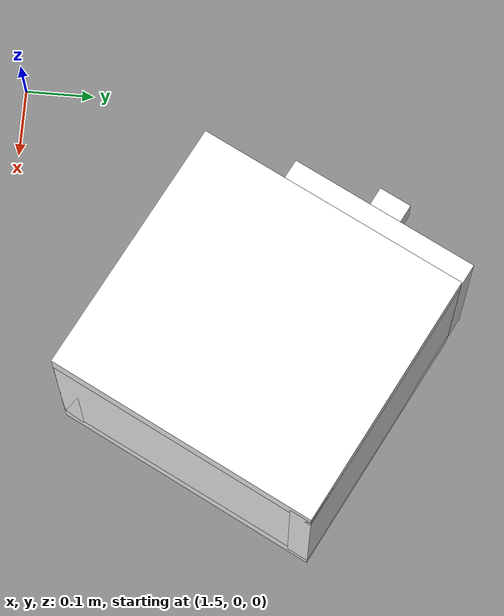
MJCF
<mujoco model="cabinet">
    <compiler angle="radian" eulerseq='zxy' />
    <option gravity = "0 0 0" />
    <option>
        <flag contact = "disable"/>
    </option>
    <statistic	extent="1.0" center="0.0 0.0 0.0"/>
    <visual>
        <map fogstart="3" fogend="5" force="0.1" znear=" 0.100000 " zfar=" 12.000000 "/>
    </visual>
    <size njmax="500" nconmax="100" />
    <actuator>
        <velocity joint="bottom_left_hinge" name="viva_revolution" kv='10'></velocity>
    </actuator>
    <asset>
        <texture builtin="flat" name="tabletex" height="32" width="32" rgb1="1 1 1" type="cube"></texture>
        <texture builtin="flat" name="objtex" height="32" width="32" rgb1="1 1 1" type="cube"></texture>
        <texture builtin="flat" name="handletex" height="32" width="32" rgb1="1 1 1" type="cube"></texture>
        <texture builtin="flat" name="wallpaper" height="32" width="32" rgb1="1 1 1" type="cube"></texture>
        <texture builtin="flat" name="kp" height="32" width="32" rgb1="1 1 1" type="cube"></texture>
        <material name="geomTable" shininess="0.03" specular="0.75" texture="tabletex"></material>
        <material name="geomObj" shininess="0.03" specular="0.75" texture="objtex"></material>
        <material name="geomHandle" shininess="0.03" specular="0.75" texture="handletex"></material>
        <material name="bg" shininess="0.03" specular="0.75" texture="wallpaper"></material>
        <material name="geomKeypad" shininess="0.03" specular="0.75" texture="kp"></material>
    </asset>
    <worldbody>
        <body name="cabinet_bottom" pos= " 1.787544 0.366601 -0.429881 "  quat= " 0.235203 0.000000 0.000000 0.971946" >
            <inertial pos="0 0 0" mass="1" diaginertia="1 1 1" />
            <geom size= " 0.213764 0.226568 0.018092 "  type="box" material="geomObj" name="b"/>
            <body name="cabinet_left" pos= " 0.000000 -0.208476 0.145693 " >
                <inertial pos="0 0 0" mass="1" diaginertia="1 1 1" />
                <geom size= " 0.213764 0.018092 0.145693 "  type="box" material="geomObj" name="c" />
            </body>
            <body name="cabinet_right" pos= " 0.000000 0.208476 0.145693 " >
                <inertial pos="0 0 0" mass="1" diaginertia="1 1 1" />
                <geom size= " 0.213764 0.018092 0.145693 "  type="box" material="geomObj" name="d" />
            </body>
            <body name="cabinet_top" pos= " 0.000000 0.000000 0.291385 " >
                <inertial pos="0 0 0" mass="1" diaginertia="1 1 1" />
                <geom size= " 0.213764 0.226568 0.018092 "  type="box" material="geomObj" name="e"/>
            </body>
            <body name="cabinet_back" pos= " -0.195672 0.000000 0.145693 "  >
                <inertial pos="0 0 0" mass="1" diaginertia="1 1 1" />
                <geom size= " 0.018092 0.226568 0.145693 "  type="box" material="geomObj" name="f" />
            </body>
            <body name="cabinet_keypad" pos= " 0.018092 0.156339 0.145693 " >
                <inertial pos="0 0 0" mass="1" diaginertia="1 1 1" />
                <geom size= " 0.195672 0.069230 0.127601 "  type="box" material="geomKeypad" name="keypizzlemynizzle" />
            </body>
            <body name="cabinet_left_hinge" pos= " 0.213764 -0.069230 0.000000 " >
                <inertial pos= " 0.020000 0.000000 0.145693 "  mass="1" diaginertia="1 1 1" />
                <joint name="bottom_left_hinge" type="hinge" pos="0 0 0" axis="0 1 0" limited="true" range= "0 2.3"  />
                <geom size= " 0.018092 0.157339 0.145693 "  pos= " 0.020000 0.000000 0.145693 "  type="box" material="geomObj" name="g"/>
                <body name="handle_link" pos= " 0.053441 0.000000 0.255201 " >
                    <inertial pos="0 0 0" mass="1" diaginertia="1 1 1" />
                    <geom size= " 0.017971 0.026741 0.026718 "  type="box" material="geomHandle" name="h"/>
                </body>
            </body>
        </body>
        <body name="external_camera_body_0" pos="0.0 0 0.00">
            <camera euler="-1.57 1.57 0.0" fovy=" 54.280851 " name="external_camera_0" pos="0.0 0 0"></camera>
            <inertial pos= " 0.00 0.0 0.000000 " mass="1" diaginertia="1 1 1" />
            <joint name="cam_j" pos="0.0 0 0" axis = "1 0 0" type="free" />
        </body>
    </worldbody>
</mujoco>
